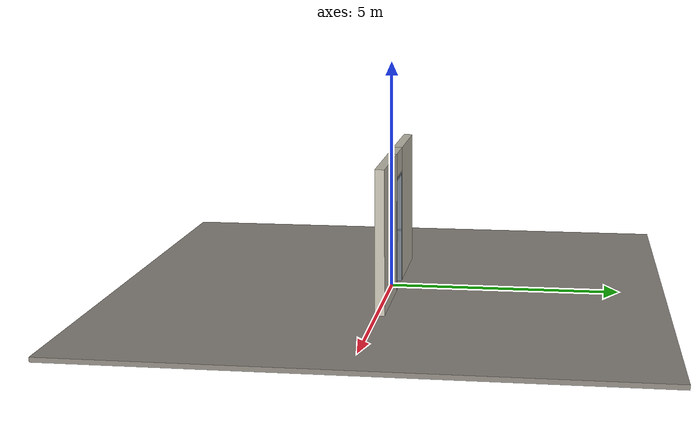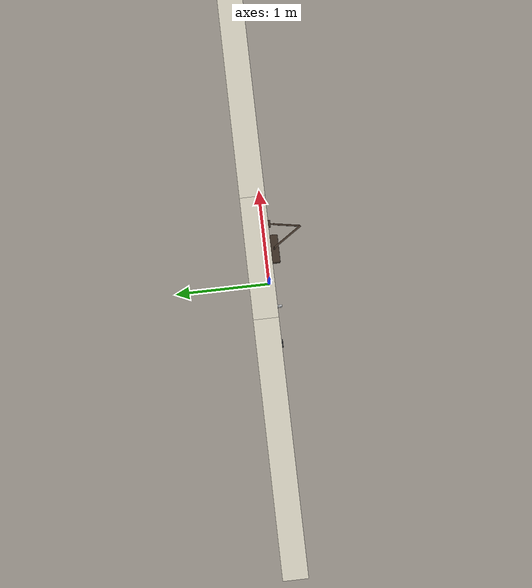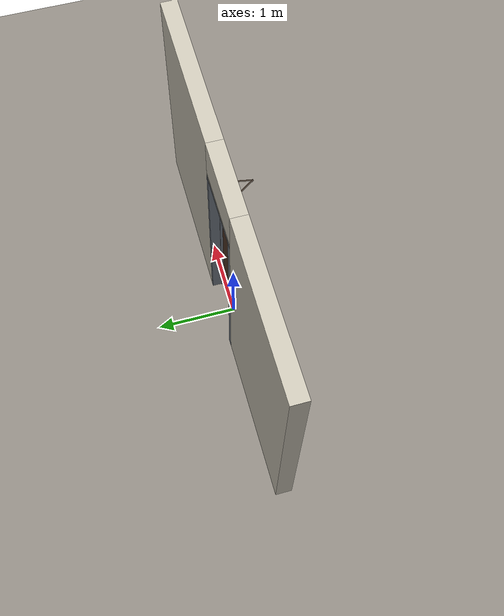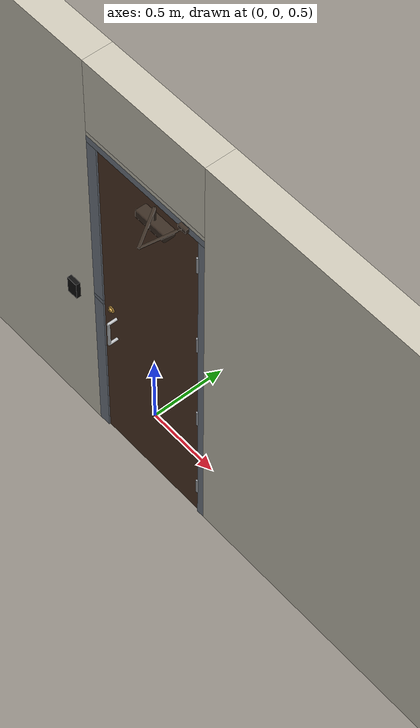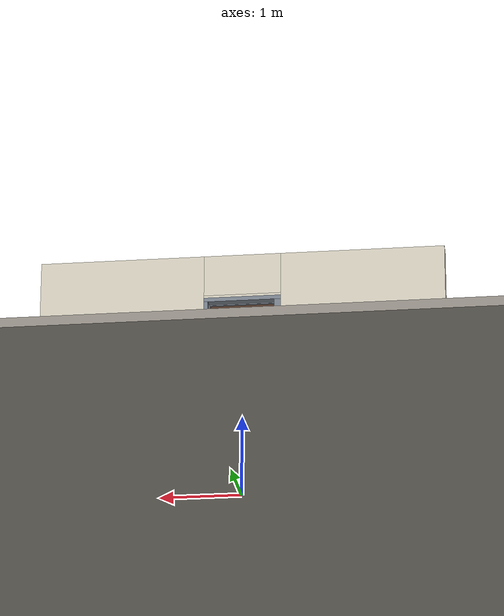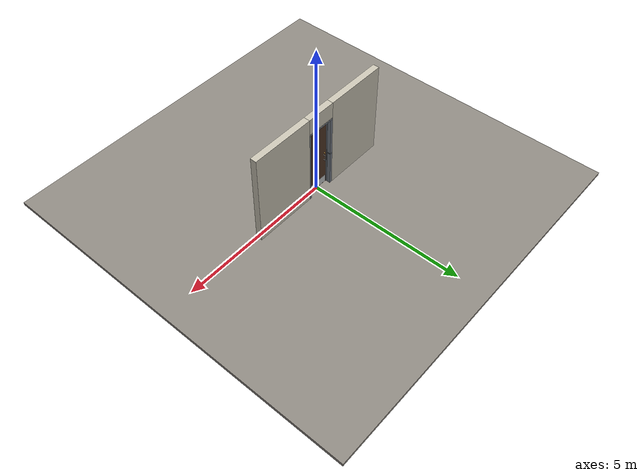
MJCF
<?xml version="1.0" ?>
<mujoco model="db0799_swing_single_full">
  <compiler angle="radian" meshdir="../../hardware" texturedir="../../textures" autolimits="true" inertiafromgeom="false"/>
  <option timestep="0.002" integrator="implicitfast" cone="elliptic" impratio="10" noslip_iterations="3">
    <flag multiccd="enable"/>
  </option>
  <size memory="16M"/>
  <default>
    <geom condim="4" solref="0.005 1" solimp="0.95 0.99 0.001"/>
    <joint solreflimit="0.005 1" solimplimit="0.95 0.99 0.001"/>
    <tendon solreflimit="0.005 1"/>
    <equality solref="0.002 1"/>
  </default>
  <visual>
    <headlight ambient="0.4 0.4 0.4" diffuse="0.7 0.7 0.7" specular="0.2 0.2 0.2"/>
    <quality shadowsize="4096"/>
    <map znear="0.01" zfar="60"/>
  </visual>
  <asset>
    <mesh name="closer_body_b226fdb10b" file="closer_body_b226fdb10b.obj"/>
    <mesh name="cyl_face_e9e5036966" file="cyl_face_e9e5036966.obj"/>
    <mesh name="hinge_e22b26c0c1" file="hinge_e22b26c0c1.obj"/>
    <mesh name="hinge_jamb_e1d088f8dc" file="hinge_jamb_e1d088f8dc.obj"/>
    <mesh name="pull_1e5d69a91a" file="pull_1e5d69a91a.obj"/>
    <mesh name="thumbturn_eb5c9899a3" file="thumbturn_eb5c9899a3.obj"/>
    <material name="mat_floor" rgba="0.55 0.53 0.5 1" specular="0.2" shininess="0.15" reflectance="0"/>
    <material name="mat_wall" rgba="0.78 0.76 0.7 1" specular="0.2" shininess="0.1" reflectance="0"/>
    <material name="mat_leaf" rgba="0.3 0.2 0.14 1" specular="0.2" shininess="0.44" reflectance="0"/>
    <material name="mat_hinge" rgba="0.65 0.66 0.68 1" specular="0.74" shininess="0.5" reflectance="0.36"/>
    <material name="mat_op_stainless" rgba="0.75 0.76 0.77 1" specular="0.8" shininess="0.65" reflectance="0.4"/>
    <material name="mat_deadbolt" rgba="0.85 0.66 0.3 1" specular="0.8" shininess="0.75" reflectance="0.4"/>
    <material name="mat_frame" rgba="0.45 0.48 0.52 1" specular="0.32" shininess="0.6" reflectance="0.08"/>
    <material name="mat_closer" rgba="0.22 0.17 0.13 1" specular="0.8" shininess="0.6" reflectance="0.4"/>
    <material name="mat_kick" rgba="0.75 0.76 0.77 1" specular="0.8" shininess="0.65" reflectance="0.4"/>
    <material name="mat_wallreader" rgba="0.05 0.05 0.05 1" specular="0.38" shininess="0.3" reflectance="0.12"/>
    <texture name="skybox" type="skybox" builtin="gradient" rgb1="0.6 0.7 0.85" rgb2="0.9 0.92 0.95" width="256" height="256"/>
  </asset>
  <worldbody>
    <light name="sun" pos="1.5 -2.5 4" dir="-0.3 0.5 -0.8" directional="true" diffuse="0.8 0.8 0.8" specular="0.3 0.3 0.3" castshadow="true"/>
    <light name="fill" pos="-1.5 2.5 3" dir="0.3 -0.5 -0.7" directional="true" diffuse="0.35 0.35 0.4" castshadow="false"/>
    <camera name="robot_view" pos="0 -2.851812 2.043887" xyaxes="1 0 0 0 0.26963 0.962964" fovy="52"/>
    <camera name="far_view" pos="0 2.993813 2.043887" xyaxes="-1 0 0 0 -0.26963 0.962964" fovy="52"/>
    <camera name="iso" pos="-2.221337 -2.384162 2.511538" xyaxes="0.741536 -0.670913 0 0.242917 0.268487 0.932151" fovy="46"/>
    <camera name="detail_handle" pos="-0.1205 -0.882 1.32" xyaxes="0.97561 0.219512 0 -0.070934 0.315262 0.94635" fovy="38"/>
    <geom name="floor" type="box" size="6 6 0.05" pos="0 0 -0.05" material="mat_floor" group="0" contype="1" conaffinity="1" friction="0.8 0.005 0.0001" density="2400"/>
    <geom name="wall_left" type="box" size="1.00475 0.1 1.5255" pos="-1.49525 0.071 1.5255" material="mat_wall" group="0" contype="1" conaffinity="1" friction="0.6 0.005 0.0001" density="800"/>
    <geom name="wall_right" type="box" size="1.01975 0.1 1.5255" pos="1.48025 0.071 1.5255" material="mat_wall" group="0" contype="1" conaffinity="1" friction="0.6 0.005 0.0001" density="800"/>
    <geom name="wall_header" type="box" size="0.4755 0.1 0.26" pos="-0.015 0.071 2.791" material="mat_wall" group="0" contype="1" conaffinity="1" friction="0.6 0.005 0.0001" density="800"/>
    <geom name="hinge_0_jamb" type="mesh" mesh="hinge_jamb_e1d088f8dc" pos="0.4075 -0.029 0.259" quat="0 0 1 0" material="mat_hinge" group="1" contype="0" conaffinity="0" density="7850"/>
    <geom name="hinge_1_jamb" type="mesh" mesh="hinge_jamb_e1d088f8dc" pos="0.4075 -0.029 0.928333" quat="0 0 1 0" material="mat_hinge" group="1" contype="0" conaffinity="0" density="7850"/>
    <geom name="hinge_2_jamb" type="mesh" mesh="hinge_jamb_e1d088f8dc" pos="0.4075 -0.029 1.597667" quat="0 0 1 0" material="mat_hinge" group="1" contype="0" conaffinity="0" density="7850"/>
    <geom name="hinge_3_jamb" type="mesh" mesh="hinge_jamb_e1d088f8dc" pos="0.4075 -0.029 2.267" quat="0 0 1 0" material="mat_hinge" group="1" contype="0" conaffinity="0" density="7850"/>
    <geom name="leaf_deadbolt_strike_b" type="box" size="0.0155 0.003 0.0005" pos="-0.41 0 1.1615" quat="0.5 0.5 0.5 0.5" material="mat_deadbolt" group="1" contype="0" conaffinity="0" density="7800"/>
    <geom name="leaf_deadbolt_strike_l" type="box" size="0.003 0.0155 0.0005" pos="-0.41 -0.0125 1.18" quat="0.5 0.5 0.5 0.5" material="mat_deadbolt" group="1" contype="0" conaffinity="0" density="7800"/>
    <geom name="leaf_deadbolt_strike_t" type="box" size="0.0155 0.003 0.0005" pos="-0.41 0 1.1985" quat="0.5 0.5 0.5 0.5" material="mat_deadbolt" group="1" contype="0" conaffinity="0" density="7800"/>
    <geom name="leaf_deadbolt_strike_r" type="box" size="0.003 0.0155 0.0005" pos="-0.41 0.0125 1.18" quat="0.5 0.5 0.5 0.5" material="mat_deadbolt" group="1" contype="0" conaffinity="0" density="7800"/>
    <geom name="jamb_hinge" type="box" size="0.025 0.1 1.2255" pos="0.4355 0.071 1.2255" material="mat_frame" group="0" contype="1" conaffinity="1" friction="0.6 0.005 0.0001" density="300"/>
    <geom name="strike_1180_wall_n" type="box" size="0.04 0.08075 0.0155" pos="-0.4505 0.09025 1.18" material="mat_frame" group="0" contype="1" conaffinity="1" friction="0.6 0.005 0.0001" density="300"/>
    <geom name="strike_1180_wall_p" type="box" size="0.04 0.00975 0.0155" pos="-0.4505 -0.01925 1.18" material="mat_frame" group="0" contype="1" conaffinity="1" friction="0.6 0.005 0.0001" density="300"/>
    <geom name="strike_1180_back" type="box" size="0.0253 0.0095 0.0155" pos="-0.4652 0 1.18" material="mat_frame" group="0" contype="1" conaffinity="1" friction="0.6 0.005 0.0001" density="300"/>
    <geom name="jamb_strike_0" type="box" size="0.04 0.1 0.58225" pos="-0.4505 0.071 0.58225" material="mat_frame" group="0" contype="1" conaffinity="1" friction="0.6 0.005 0.0001" density="300"/>
    <geom name="jamb_strike_1" type="box" size="0.04 0.1 0.62775" pos="-0.4505 0.071 1.82325" material="mat_frame" group="0" contype="1" conaffinity="1" friction="0.6 0.005 0.0001" density="300"/>
    <geom name="jamb_head" type="box" size="0.4755 0.1 0.025" pos="-0.015 0.071 2.476" material="mat_frame" group="0" contype="1" conaffinity="1" friction="0.6 0.005 0.0001" density="300"/>
    <geom name="head_stud" type="box" size="0.4755 0.1 0.015" pos="-0.015 0.071 2.516" material="mat_wall" group="0" contype="1" conaffinity="1" friction="0.6 0.005 0.0001" density="500"/>
    <geom name="stop_hinge" type="box" size="0.0055 0.016 1.2255" pos="0.405 0.0385 1.2255" material="mat_frame" group="0" contype="1" conaffinity="1" friction="0.6 0.005 0.0001" density="300"/>
    <geom name="stop_strike" type="box" size="0.0055 0.016 1.2255" pos="-0.405 0.0385 1.2255" material="mat_frame" group="0" contype="1" conaffinity="1" friction="0.6 0.005 0.0001" density="300"/>
    <geom name="stop_head" type="box" size="0.4105 0.016 0.0055" pos="0 0.0385 2.4455" material="mat_frame" group="0" contype="1" conaffinity="1" friction="0.6 0.005 0.0001" density="300"/>
    <geom name="closer_bracket" type="box" size="0.03 0.012 0.014" pos="0.3105 -0.041 2.481" material="mat_closer" group="1" contype="0" conaffinity="0" density="2700"/>
    <geom name="wall_reader" type="box" size="0.04 0.015 0.06" pos="-0.6605 -0.044 1.1" material="mat_wallreader" group="0" contype="1" conaffinity="1" friction="0.6 0.005 0.0001" density="1000"/>
    <site name="approach_point" pos="0 -1.5 0" quat="1 0 0 0" size="0.05" rgba="0.2 0.9 0.2 0.5" group="4"/>
    <site name="goal_point" pos="0 1.5 0" quat="1 0 0 0" size="0.05" rgba="0.2 0.9 0.2 0.5" group="4"/>
    <site name="door_plane_center" pos="0 0 1.2255" quat="1 0 0 0" size="0.02" rgba="0.2 0.9 0.2 0.5" group="4"/>
    <body name="leaf" pos="0.4105 0 0">
      <inertial pos="-0.395695 -0.006688 1.3198" mass="62.547361" quat="0.5071 -0.505718 -0.487199 -0.499736" diaginertia="3.284263742 37.284216061 40.497232683"/>
      <joint name="leaf_hinge" type="hinge" axis="0 0 1" pos="-0.003 -0.029 0" limited="true" range="0 1.570796" damping="10.192359" frictionloss="0.702818" stiffness="13.521804" springref="-2.326613" armature="0.02"/>
      <geom name="leaf_slab" type="box" size="0.4065 0.022 1.219" pos="-0.4095 0 1.228" material="mat_leaf" group="0" contype="1" conaffinity="1" friction="0.4 0.005 0.0001" density="1"/>
      <geom name="hinge_0" type="mesh" mesh="hinge_e22b26c0c1" pos="-0.003 -0.029 0.259" quat="0 0 1 0" material="mat_hinge" group="1" contype="0" conaffinity="0" density="7850"/>
      <geom name="hinge_1" type="mesh" mesh="hinge_e22b26c0c1" pos="-0.003 -0.029 0.928333" quat="0 0 1 0" material="mat_hinge" group="1" contype="0" conaffinity="0" density="7850"/>
      <geom name="hinge_2" type="mesh" mesh="hinge_e22b26c0c1" pos="-0.003 -0.029 1.597667" quat="0 0 1 0" material="mat_hinge" group="1" contype="0" conaffinity="0" density="7850"/>
      <geom name="hinge_3" type="mesh" mesh="hinge_e22b26c0c1" pos="-0.003 -0.029 2.267" quat="0 0 1 0" material="mat_hinge" group="1" contype="0" conaffinity="0" density="7850"/>
      <geom name="leaf_pull_n" type="mesh" mesh="pull_1e5d69a91a" pos="-0.711 -0.022 1.04" quat="0 0 -0.707107 0.707107" material="mat_op_stainless" group="1" contype="0" conaffinity="0" density="3000"/>
      <geom name="leaf_pull_col_n" type="capsule" size="0.0095 0.08" pos="-0.711 -0.082 1.04" material="mat_op_stainless" group="3" contype="1" conaffinity="1" rgba="0.8 0.3 0.3 0.25" friction="0.7 0.01 0.0001" density="3000"/>
      <geom name="leaf_pull_p" type="mesh" mesh="pull_1e5d69a91a" pos="-0.711 0.022 1.04" quat="0 0 0.707107 0.707107" material="mat_op_stainless" group="1" contype="0" conaffinity="0" density="3000"/>
      <geom name="leaf_pull_col_p" type="capsule" size="0.0095 0.08" pos="-0.711 0.082 1.04" material="mat_op_stainless" group="3" contype="1" conaffinity="1" rgba="0.8 0.3 0.3 0.25" friction="0.7 0.01 0.0001" density="3000"/>
      <geom name="leaf_deadbolt_faceplate" type="box" size="0.0006 0.014 0.0245" pos="-0.8154 0 1.18" material="mat_deadbolt" group="1" contype="0" conaffinity="0" density="8500"/>
      <geom name="leaf_deadbolt_cylinder_face" type="mesh" mesh="cyl_face_e9e5036966" pos="-0.751 -0.022 1.18" quat="0 0 -0.707107 0.707107" material="mat_deadbolt" group="1" contype="0" conaffinity="0" density="7100"/>
      <geom name="closer_body" type="mesh" mesh="closer_body_b226fdb10b" pos="-0.3 -0.022 2.358" quat="0 0 -0.707107 0.707107" material="mat_closer" group="1" contype="0" conaffinity="0" density="2000"/>
      <geom name="closer_body_col" type="box" size="0.12 0.04 0.03" pos="-0.3 -0.062 2.358" material="mat_closer" group="3" contype="1" conaffinity="1" rgba="0.8 0.3 0.3 0.25" friction="0.6 0.005 0.0001" density="2000"/>
      <geom name="closer_pinion_shaft" type="cylinder" size="0.008 0.0615" pos="-0.3 -0.064 2.4195" material="mat_closer" group="1" contype="0" conaffinity="0" density="2700"/>
      <geom name="kick_plate_p" type="box" size="0.3765 0.0008 0.125" pos="-0.4095 0.0228 0.144" material="mat_kick" group="2" contype="0" conaffinity="0" density="7900"/>
      <site name="leaf_pull_grip_n" pos="-0.711 -0.082 1.04" quat="1 0 0 0" size="0.012" rgba="0.2 0.9 0.2 0.5" group="4"/>
      <site name="leaf_pull_grip_p" pos="-0.711 0.082 1.04" quat="1 0 0 0" size="0.012" rgba="0.2 0.9 0.2 0.5" group="4"/>
      <site name="leaf_edge_mid" pos="-0.816 0 1.219" quat="1 0 0 0" size="0.02" rgba="0.2 0.9 0.2 0.5" group="4"/>
      <body name="leaf_deadbolt" pos="-0.816 0 1.18">
        <inertial pos="0.0277 0 0" mass="0.18836" quat="0 0 0.707107 0.707107" diaginertia="0.000013829 0.000052194 0.000057986"/>
        <joint name="leaf_deadbolt_slide" type="slide" axis="1 0 0" limited="true" range="0 0.0254" damping="5" frictionloss="1.5" armature="0.1" ref="0.0254"/>
        <geom name="leaf_deadbolt_box" type="box" size="0.0277 0.008 0.0125" pos="0.0277 0 0" material="mat_deadbolt" group="0" contype="1" conaffinity="1" friction="0.3 0.005 0.0001" density="8500"/>
      </body>
      <body name="leaf_deadbolt_thumbturn" pos="-0.751 0.022 1.18">
        <inertial pos="0 0.012928 0" mass="0.178946" quat="0.000001 -0.707107 0.707107 -0.000001" diaginertia="0.000026045 0.000026215 0.000032438"/>
        <joint name="leaf_deadbolt_thumbturn_hinge" type="hinge" axis="0 -1 0" limited="true" range="0 1.5708" damping="0.05" frictionloss="0.35" armature="0.005" ref="1.5708"/>
        <geom name="leaf_deadbolt_thumbturn_mesh" type="mesh" mesh="thumbturn_eb5c9899a3" pos="0 0 0" quat="0.500001 -0.500001 0.499999 0.499999" material="mat_deadbolt" group="0" contype="1" conaffinity="1" friction="0.6 0.005 0.0001" density="7100"/>
        <geom name="leaf_deadbolt_thumbturn_col" type="box" size="0.006 0.012 0.016" pos="0 0.02 0" quat="0.707105 0 -0.707108 0" material="mat_deadbolt" group="3" contype="1" conaffinity="1" rgba="0.8 0.3 0.3 0.25" friction="0.6 0.005 0.0001" density="7100"/>
      </body>
      <body name="closer_arm_main" pos="-0.3 -0.064 2.481" quat="0.881485 0 0 -0.472212">
        <inertial pos="0.14 0 0" mass="0.12096" quat="1 0 0 0" diaginertia="0.000003588 0.00079128 0.000792852"/>
        <joint name="closer_pinion" type="hinge" axis="0 0 1" limited="false" damping="0.01" armature="0.002"/>
        <geom name="closer_arm_main_geom" type="box" size="0.14 0.008 0.005" pos="0.14 0 0" material="mat_closer" group="1" contype="0" conaffinity="0" density="2700"/>
        <body name="closer_arm_fore" pos="0.28 0 0" quat="0.371222 0 0 0.928544">
          <inertial pos="0.128088 0 0" mass="0.076531" quat="1 0 0 0" diaginertia="0.000001771 0.000437665 0.000438201"/>
          <joint name="closer_elbow" type="hinge" axis="0 0 1" limited="false" damping="0.01" armature="0.002"/>
          <geom name="closer_arm_fore_geom" type="box" size="0.1125 0.007 0.004" pos="0.1125 0 0" material="mat_closer" group="1" contype="0" conaffinity="0" density="2700"/>
          <geom name="closer_fore_neck" type="box" size="0.0175 0.003 0.003" pos="0.2425 0 0" material="mat_closer" group="1" contype="0" conaffinity="0" density="2700"/>
          <geom name="closer_fore_pivot" type="cylinder" size="0.005 0.012" pos="0.26 0 0" material="mat_closer" group="1" contype="0" conaffinity="0" density="2700"/>
        </body>
      </body>
    </body>
  </worldbody>
  <equality>
    <joint name="leaf_deadbolt_couple" joint1="leaf_deadbolt_slide" joint2="leaf_deadbolt_thumbturn_hinge" polycoef="0 0.01617 0 0 0" active="true"/>
    <connect name="closer_arm_connect" body1="closer_arm_fore" body2="world" anchor="0.26 0 0" active="true"/>
  </equality>
  <contact>
    <exclude body1="leaf_deadbolt" body2="leaf_deadbolt_thumbturn"/>
    <exclude body1="closer_arm_main" body2="leaf"/>
    <exclude body1="closer_arm_fore" body2="leaf"/>
    <exclude body1="closer_arm_main" body2="closer_arm_fore"/>
  </contact>
  <sensor>
    <jointpos name="leaf_hinge_pos" joint="leaf_hinge"/>
    <jointvel name="leaf_hinge_vel" joint="leaf_hinge"/>
    <jointpos name="leaf_deadbolt_slide_pos" joint="leaf_deadbolt_slide"/>
    <jointvel name="leaf_deadbolt_slide_vel" joint="leaf_deadbolt_slide"/>
    <jointpos name="leaf_deadbolt_thumbturn_hinge_pos" joint="leaf_deadbolt_thumbturn_hinge"/>
    <jointvel name="leaf_deadbolt_thumbturn_hinge_vel" joint="leaf_deadbolt_thumbturn_hinge"/>
  </sensor>
</mujoco>
